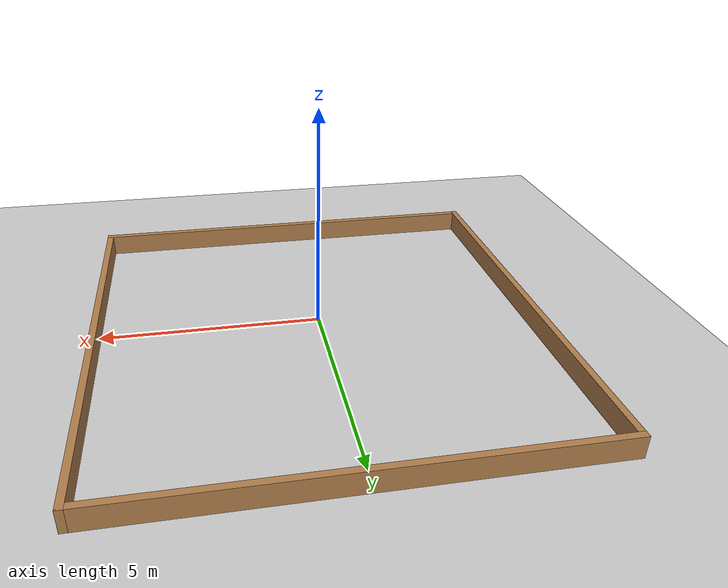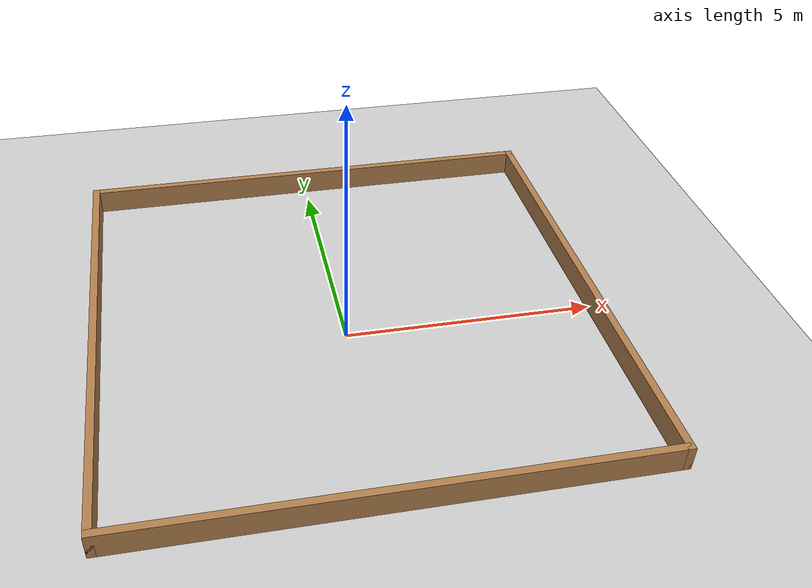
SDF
<?xml version="1.0" ?>
<sdf version="1.6">
  <world name="default">
    <include>
      <uri>model://ground_plane</uri>
    </include>
    <include>
      <uri>model://sun</uri>
    </include>
    <include>
      <uri>model://Cour</uri>
    </include>
  </world>
</sdf>

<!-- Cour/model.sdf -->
<sdf version='1.6'>
  <model name='Cour'>
    <pose frame=''>0.095 0.535 0 0 -0 0</pose>
    <link name='Wall_0'>
      <collision name='Wall_0_Collision'>
        <geometry>
          <box>
            <size>10 0.15 0.5</size>
          </box>
        </geometry>
        <pose frame=''>0 0 0.25 0 -0 0</pose>
      </collision>
      <visual name='Wall_0_Visual'>
        <pose frame=''>0 0 0.25 0 -0 0</pose>
        <geometry>
          <box>
            <size>10 0.15 0.5</size>
          </box>
        </geometry>
        <material>
          <script>
            <uri>file://media/materials/scripts/gazebo.material</uri>
            <name>Gazebo/Wood</name>
          </script>
          <ambient>1 1 1 1</ambient>
        </material>
        <meta>
          <layer>0</layer>
        </meta>
      </visual>
      <pose frame=''>-0 -4.925 0 0 -0 0</pose>
    </link>
    <link name='Wall_1'>
      <collision name='Wall_1_Collision'>
        <geometry>
          <box>
            <size>10 0.15 0.5</size>
          </box>
        </geometry>
        <pose frame=''>0 0 0.25 0 -0 0</pose>
      </collision>
      <visual name='Wall_1_Visual'>
        <pose frame=''>0 0 0.25 0 -0 0</pose>
        <geometry>
          <box>
            <size>10 0.15 0.5</size>
          </box>
        </geometry>
        <material>
          <script>
            <uri>file://media/materials/scripts/gazebo.material</uri>
            <name>Gazebo/Wood</name>
          </script>
          <ambient>1 1 1 1</ambient>
        </material>
        <meta>
          <layer>0</layer>
        </meta>
      </visual>
      <pose frame=''>4.925 0 0 0 -0 1.5708</pose>
    </link>
    <link name='Wall_2'>
      <collision name='Wall_2_Collision'>
        <geometry>
          <box>
            <size>10 0.15 0.5</size>
          </box>
        </geometry>
        <pose frame=''>0 0 0.25 0 -0 0</pose>
      </collision>
      <visual name='Wall_2_Visual'>
        <pose frame=''>0 0 0.25 0 -0 0</pose>
        <geometry>
          <box>
            <size>10 0.15 0.5</size>
          </box>
        </geometry>
        <material>
          <script>
            <uri>file://media/materials/scripts/gazebo.material</uri>
            <name>Gazebo/Wood</name>
          </script>
          <ambient>1 1 1 1</ambient>
        </material>
        <meta>
          <layer>0</layer>
        </meta>
      </visual>
      <pose frame=''>-0 4.925 0 0 -0 3.14159</pose>
    </link>
    <link name='Wall_3'>
      <collision name='Wall_3_Collision'>
        <geometry>
          <box>
            <size>10 0.15 0.5</size>
          </box>
        </geometry>
        <pose frame=''>0 0 0.25 0 -0 0</pose>
      </collision>
      <visual name='Wall_3_Visual'>
        <pose frame=''>0 0 0.25 0 -0 0</pose>
        <geometry>
          <box>
            <size>10 0.15 0.5</size>
          </box>
        </geometry>
        <material>
          <script>
            <uri>file://media/materials/scripts/gazebo.material</uri>
            <name>Gazebo/Wood</name>
          </script>
          <ambient>1 1 1 1</ambient>
        </material>
        <meta>
          <layer>0</layer>
        </meta>
      </visual>
      <pose frame=''>-4.925 0 0 0 -0 -1.5708</pose>
    </link>
    <static>1</static>
  </model>
</sdf>
